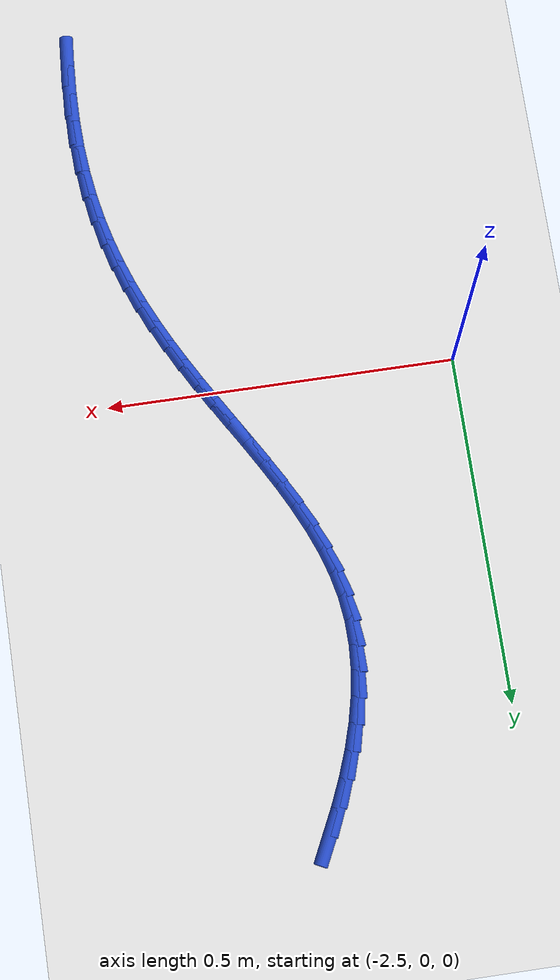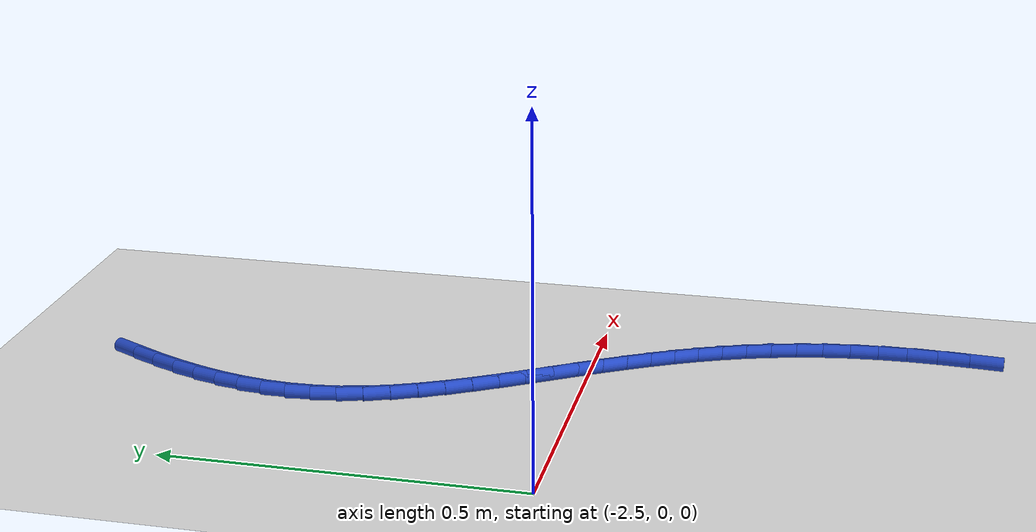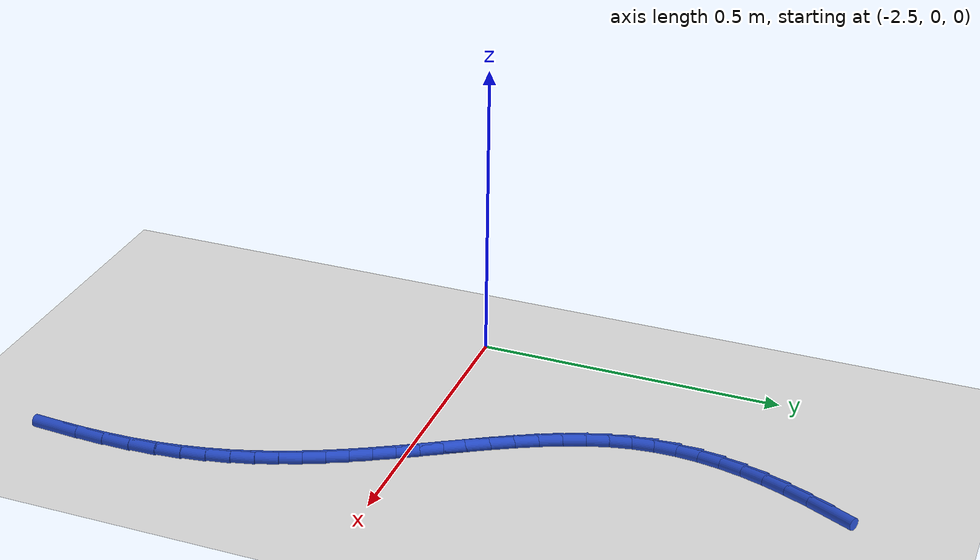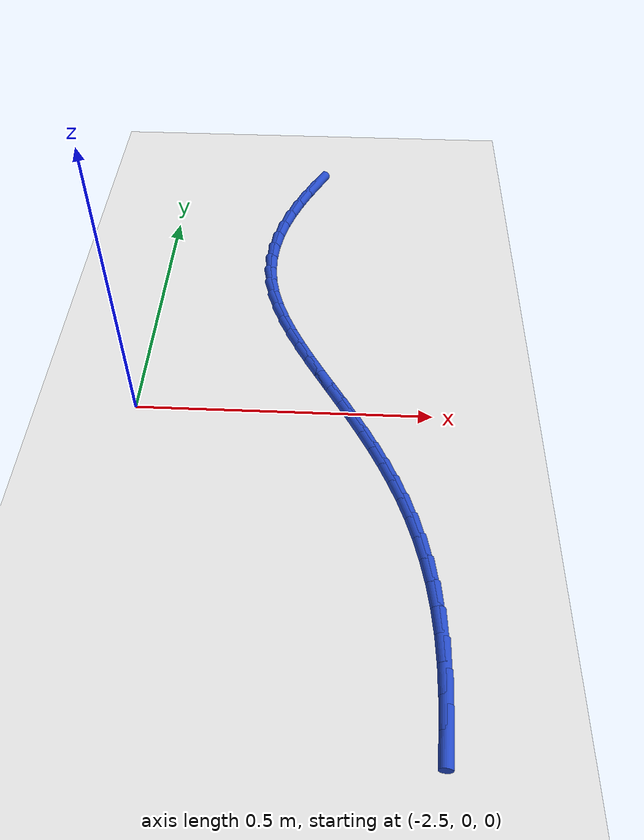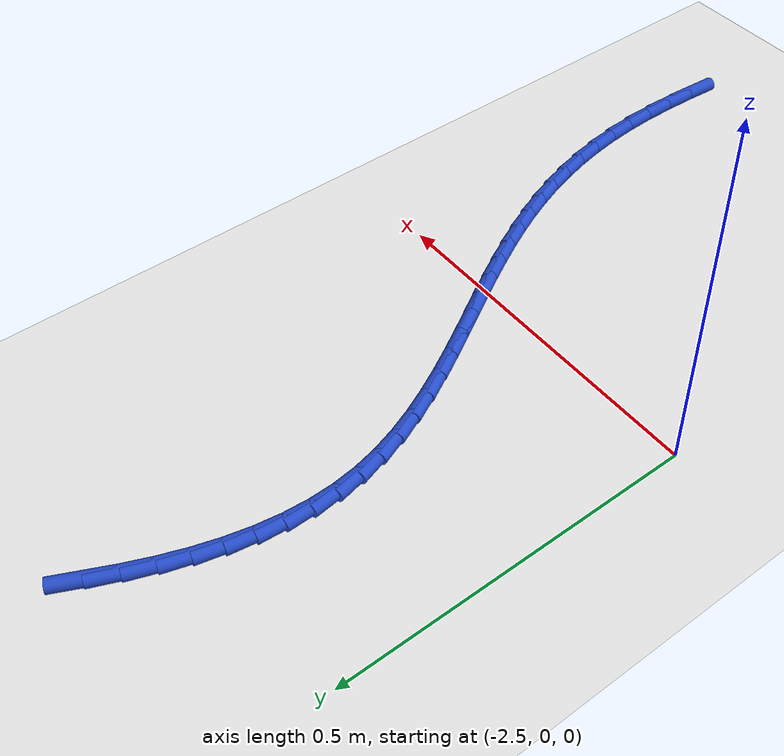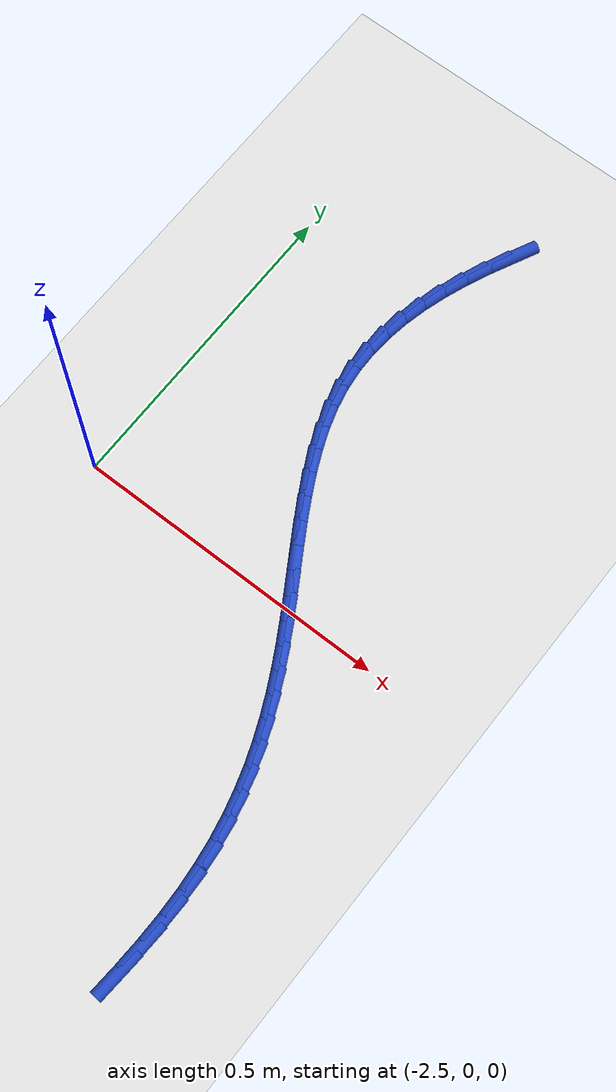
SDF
<sdf version="1.6">
 <world name="default">
  <model name="ground_plane">
   <static>1</static>
   <link name="link">
    <collision name="collision">
     <geometry><plane><normal>0 0 1</normal><size>100 100</size></plane></geometry>
     <surface><friction><ode><mu>100</mu><mu2>50</mu2></ode></friction></surface>
    </collision>
    <visual name="visual">
     <cast_shadows>0</cast_shadows>
     <geometry><plane><normal>0 0 1</normal><size>100 100</size></plane></geometry>
     <material>
      <script><uri>file://media/materials/scripts/gazebo.material</uri><name>Gazebo/WhiteGlow</name></script>
     </material>
    </visual>
   </link>
  </model>
  <model name="line">
   <link name="link_84">
    <pose>-2.222268008583826 0.6439682551880569 0.01 0 1.57 1.1169397786292758</pose>
    <collision name="collision">
     <geometry><cylinder><radius>0.01</radius><length>0.08</length></cylinder></geometry>
    </collision>
    <visual name="visual">
     <material>
      <script><name>Gazebo/Blue</name><uri>file://media/materials/scripts/gazebo.material</uri></script>
     </material>
     <geometry><cylinder><radius>0.01</radius><length>0.08</length></cylinder></geometry>
    </visual>
   </link>
   <link name="link_85">
    <pose>-2.240651079986755 0.6062841587162477 0.01 0 1.57 1.161150256735616</pose>
    <collision name="collision">
     <geometry><cylinder><radius>0.01</radius><length>0.08</length></cylinder></geometry>
    </collision>
    <visual name="visual">
     <material>
      <script><name>Gazebo/Blue</name><uri>file://media/materials/scripts/gazebo.material</uri></script>
     </material>
     <geometry><cylinder><radius>0.01</radius><length>0.08</length></cylinder></geometry>
    </visual>
   </link>
   <link name="link_86">
    <pose>-2.256825405246102 0.5690341935806772 0.01 0 1.57 1.2125159011337443</pose>
    <collision name="collision">
     <geometry><cylinder><radius>0.01</radius><length>0.08</length></cylinder></geometry>
    </collision>
    <visual name="visual">
     <material>
      <script><name>Gazebo/Blue</name><uri>file://media/materials/scripts/gazebo.material</uri></script>
     </material>
     <geometry><cylinder><radius>0.01</radius><length>0.08</length></cylinder></geometry>
    </visual>
   </link>
   <link name="link_87">
    <pose>-2.270620321164356 0.5321928248246031 0.01 0 1.57 1.27162345154952</pose>
    <collision name="collision">
     <geometry><cylinder><radius>0.01</radius><length>0.08</length></cylinder></geometry>
    </collision>
    <visual name="visual">
     <material>
      <script><name>Gazebo/Blue</name><uri>file://media/materials/scripts/gazebo.material</uri></script>
     </material>
     <geometry><cylinder><radius>0.01</radius><length>0.08</length></cylinder></geometry>
    </visual>
   </link>
   <link name="link_88">
    <pose>-2.281865164544009 0.49573451749128344 0.01 0 1.57 1.3389234756282162</pose>
    <collision name="collision">
     <geometry><cylinder><radius>0.01</radius><length>0.08</length></cylinder></geometry>
    </collision>
    <visual name="visual">
     <material>
      <script><name>Gazebo/Blue</name><uri>file://media/materials/scripts/gazebo.material</uri></script>
     </material>
     <geometry><cylinder><radius>0.01</radius><length>0.08</length></cylinder></geometry>
    </visual>
   </link>
   <link name="link_89">
    <pose>-2.290389272187549 0.45963373662397583 0.01 0 1.57 1.4146034957193239</pose>
    <collision name="collision">
     <geometry><cylinder><radius>0.01</radius><length>0.08</length></cylinder></geometry>
    </collision>
    <visual name="visual">
     <material>
      <script><name>Gazebo/Blue</name><uri>file://media/materials/scripts/gazebo.material</uri></script>
     </material>
     <geometry><cylinder><radius>0.01</radius><length>0.08</length></cylinder></geometry>
    </visual>
   </link>
   <link name="link_90">
    <pose>-2.2960219808974682 0.42386494726593826 0.01 0 1.57 1.4984334043053187</pose>
    <collision name="collision">
     <geometry><cylinder><radius>0.01</radius><length>0.08</length></cylinder></geometry>
    </collision>
    <visual name="visual">
     <material>
      <script><name>Gazebo/Blue</name><uri>file://media/materials/scripts/gazebo.material</uri></script>
     </material>
     <geometry><cylinder><radius>0.01</radius><length>0.08</length></cylinder></geometry>
    </visual>
   </link>
   <link name="link_91">
    <pose>-2.2985926274762565 0.38840261446042845 0.01 0 1.57 -1.5519795544057102</pose>
    <collision name="collision">
     <geometry><cylinder><radius>0.01</radius><length>0.08</length></cylinder></geometry>
    </collision>
    <visual name="visual">
     <material>
      <script><name>Gazebo/Blue</name><uri>file://media/materials/scripts/gazebo.material</uri></script>
     </material>
     <geometry><cylinder><radius>0.01</radius><length>0.08</length></cylinder></geometry>
    </visual>
   </link>
   <link name="link_92">
    <pose>-2.2979305487264035 0.35322120325070455 0.01 0 1.57 -1.4549155898728612</pose>
    <collision name="collision">
     <geometry><cylinder><radius>0.01</radius><length>0.08</length></cylinder></geometry>
    </collision>
    <visual name="visual">
     <material>
      <script><name>Gazebo/Blue</name><uri>file://media/materials/scripts/gazebo.material</uri></script>
     </material>
     <geometry><cylinder><radius>0.01</radius><length>0.08</length></cylinder></geometry>
    </visual>
   </link>
   <link name="link_93">
    <pose>-2.2938650814504005 0.3182951786800239 0.01 0 1.57 -1.3562583666873786</pose>
    <collision name="collision">
     <geometry><cylinder><radius>0.01</radius><length>0.08</length></cylinder></geometry>
    </collision>
    <visual name="visual">
     <material>
      <script><name>Gazebo/Blue</name><uri>file://media/materials/scripts/gazebo.material</uri></script>
     </material>
     <geometry><cylinder><radius>0.01</radius><length>0.08</length></cylinder></geometry>
    </visual>
   </link>
   <link name="link_94">
    <pose>-2.2863063035207962 0.28360457010060913 0.01 0 1.57 -1.26922442815808</pose>
    <collision name="collision">
     <geometry><cylinder><radius>0.01</radius><length>0.08</length></cylinder></geometry>
    </collision>
    <visual name="visual">
     <material>
      <script><name>Gazebo/Blue</name><uri>file://media/materials/scripts/gazebo.material</uri></script>
     </material>
     <geometry><cylinder><radius>0.01</radius><length>0.08</length></cylinder></geometry>
    </visual>
   </link>
   <link name="link_95">
    <pose>-2.275591640879042 0.24915885775862104 0.01 0 1.57 -1.1973813058036513</pose>
    <collision name="collision">
     <geometry><cylinder><radius>0.01</radius><length>0.08</length></cylinder></geometry>
    </collision>
    <visual name="visual">
     <material>
      <script><name>Gazebo/Blue</name><uri>file://media/materials/scripts/gazebo.material</uri></script>
     </material>
     <geometry><cylinder><radius>0.01</radius><length>0.08</length></cylinder></geometry>
    </visual>
   </link>
   <link name="link_96">
    <pose>-2.262199375941511 0.21497722909069447 0.01 0 1.57 -1.1397000402656394</pose>
    <collision name="collision">
     <geometry><cylinder><radius>0.01</radius><length>0.08</length></cylinder></geometry>
    </collision>
    <visual name="visual">
     <material>
      <script><name>Gazebo/Blue</name><uri>file://media/materials/scripts/gazebo.material</uri></script>
     </material>
     <geometry><cylinder><radius>0.01</radius><length>0.08</length></cylinder></geometry>
    </visual>
   </link>
   <link name="link_97">
    <pose>-2.2466078778259915 0.18107887750853213 0.01 0 1.57 -1.0949742536086815</pose>
    <collision name="collision">
     <geometry><cylinder><radius>0.01</radius><length>0.08</length></cylinder></geometry>
    </collision>
    <visual name="visual">
     <material>
      <script><name>Gazebo/Blue</name><uri>file://media/materials/scripts/gazebo.material</uri></script>
     </material>
     <geometry><cylinder><radius>0.01</radius><length>0.08</length></cylinder></geometry>
    </visual>
   </link>
   <link name="link_98">
    <pose>-2.229295515650271 0.14748299642383803 0.01 0 1.57 -1.062110467449771</pose>
    <collision name="collision">
     <geometry><cylinder><radius>0.01</radius><length>0.08</length></cylinder></geometry>
    </collision>
    <visual name="visual">
     <material>
      <script><name>Gazebo/Blue</name><uri>file://media/materials/scripts/gazebo.material</uri></script>
     </material>
     <geometry><cylinder><radius>0.01</radius><length>0.08</length></cylinder></geometry>
    </visual>
   </link>
   <link name="link_99">
    <pose>-2.2107406585321394 0.11420877924831564 0.01 0 1.57 -1.0402818467778836</pose>
    <collision name="collision">
     <geometry><cylinder><radius>0.01</radius><length>0.08</length></cylinder></geometry>
    </collision>
    <visual name="visual">
     <material>
      <script><name>Gazebo/Blue</name><uri>file://media/materials/scripts/gazebo.material</uri></script>
     </material>
     <geometry><cylinder><radius>0.01</radius><length>0.08</length></cylinder></geometry>
    </visual>
   </link>
   <link name="link_100">
    <pose>-2.1914216755893836 0.0812754193936685 0.01 0 1.57 -1.0290065195776636</pose>
    <collision name="collision">
     <geometry><cylinder><radius>0.01</radius><length>0.08</length></cylinder></geometry>
    </collision>
    <visual name="visual">
     <material>
      <script><name>Gazebo/Blue</name><uri>file://media/materials/scripts/gazebo.material</uri></script>
     </material>
     <geometry><cylinder><radius>0.01</radius><length>0.08</length></cylinder></geometry>
    </visual>
   </link>
   <link name="link_101">
    <pose>-2.171816935939793 0.04870211027160015 0.01 0 1.57 -1.0281942267876836</pose>
    <collision name="collision">
     <geometry><cylinder><radius>0.01</radius><length>0.08</length></cylinder></geometry>
    </collision>
    <visual name="visual">
     <material>
      <script><name>Gazebo/Blue</name><uri>file://media/materials/scripts/gazebo.material</uri></script>
     </material>
     <geometry><cylinder><radius>0.01</radius><length>0.08</length></cylinder></geometry>
    </visual>
   </link>
   <link name="link_102">
    <pose>-2.152404808701156 0.01650804529381416 0.01 0 1.57 -1.0376889495418282</pose>
    <collision name="collision">
     <geometry><cylinder><radius>0.01</radius><length>0.08</length></cylinder></geometry>
    </collision>
    <visual name="visual">
     <material>
      <script><name>Gazebo/Blue</name><uri>file://media/materials/scripts/gazebo.material</uri></script>
     </material>
     <geometry><cylinder><radius>0.01</radius><length>0.08</length></cylinder></geometry>
    </visual>
   </link>
   <link name="link_103">
    <pose>-2.1336298196205377 -0.01530864346488393 0.01 0 1.57 -1.0545314928921254</pose>
    <collision name="collision">
     <geometry><cylinder><radius>0.01</radius><length>0.08</length></cylinder></geometry>
    </collision>
    <visual name="visual">
     <material>
      <script><name>Gazebo/Blue</name><uri>file://media/materials/scripts/gazebo.material</uri></script>
     </material>
     <geometry><cylinder><radius>0.01</radius><length>0.08</length></cylinder></geometry>
    </visual>
   </link>
   <link name="link_104">
    <pose>-2.115699794162674 -0.04689712676280903 0.01 0 1.57 -1.0774001506959099</pose>
    <collision name="collision">
     <geometry><cylinder><radius>0.01</radius><length>0.08</length></cylinder></geometry>
    </collision>
    <visual name="visual">
     <material>
      <script><name>Gazebo/Blue</name><uri>file://media/materials/scripts/gazebo.material</uri></script>
     </material>
     <geometry><cylinder><radius>0.01</radius><length>0.08</length></cylinder></geometry>
    </visual>
   </link>
   <link name="link_105">
    <pose>-2.0987215020459513 -0.07846946416260889 0.01 0 1.57 -1.1062444806550582</pose>
    <collision name="collision">
     <geometry><cylinder><radius>0.01</radius><length>0.08</length></cylinder></geometry>
    </collision>
    <visual name="visual">
     <material>
      <script><name>Gazebo/Blue</name><uri>file://media/materials/scripts/gazebo.material</uri></script>
     </material>
     <geometry><cylinder><radius>0.01</radius><length>0.08</length></cylinder></geometry>
    </visual>
   </link>
   <link name="link_106">
    <pose>-2.082801334768981 -0.11023795059988138 0.01 0 1.57 -1.1408313979849176</pose>
    <collision name="collision">
     <geometry><cylinder><radius>0.01</radius><length>0.08</length></cylinder></geometry>
    </collision>
    <visual name="visual">
     <material>
      <script><name>Gazebo/Blue</name><uri>file://media/materials/scripts/gazebo.material</uri></script>
     </material>
     <geometry><cylinder><radius>0.01</radius><length>0.08</length></cylinder></geometry>
    </visual>
   </link>
   <link name="link_107">
    <pose>-2.0680456838303787 -0.14241488101022445 0.01 0 1.57 -1.1807154746610262</pose>
    <collision name="collision">
     <geometry><cylinder><radius>0.01</radius><length>0.08</length></cylinder></geometry>
    </collision>
    <visual name="visual">
     <material>
      <script><name>Gazebo/Blue</name><uri>file://media/materials/scripts/gazebo.material</uri></script>
     </material>
     <geometry><cylinder><radius>0.01</radius><length>0.08</length></cylinder></geometry>
    </visual>
   </link>
   <link name="link_108">
    <pose>-2.054560940728758 -0.17521255032923594 0.01 0 1.57 -1.225230463675919</pose>
    <collision name="collision">
     <geometry><cylinder><radius>0.01</radius><length>0.08</length></cylinder></geometry>
    </collision>
    <visual name="visual">
     <material>
      <script><name>Gazebo/Blue</name><uri>file://media/materials/scripts/gazebo.material</uri></script>
     </material>
     <geometry><cylinder><radius>0.01</radius><length>0.08</length></cylinder></geometry>
    </visual>
   </link>
   <link name="link_109">
    <pose>-2.0424534969627324 -0.20884325349251373 0.01 0 1.57 -1.2735042862926875</pose>
    <collision name="collision">
     <geometry><cylinder><radius>0.01</radius><length>0.08</length></cylinder></geometry>
    </collision>
    <visual name="visual">
     <material>
      <script><name>Gazebo/Blue</name><uri>file://media/materials/scripts/gazebo.material</uri></script>
     </material>
     <geometry><cylinder><radius>0.01</radius><length>0.08</length></cylinder></geometry>
    </visual>
   </link>
   <link name="link_110">
    <pose>-2.031829744030916 -0.24351928543565582 0.01 0 1.57 -1.3245017713641818</pose>
    <collision name="collision">
     <geometry><cylinder><radius>0.01</radius><length>0.08</length></cylinder></geometry>
    </collision>
    <visual name="visual">
     <material>
      <script><name>Gazebo/Blue</name><uri>file://media/materials/scripts/gazebo.material</uri></script>
     </material>
     <geometry><cylinder><radius>0.01</radius><length>0.08</length></cylinder></geometry>
    </visual>
   </link>
   <link name="link_111">
    <pose>-2.022796073431923 -0.27945294109425994 0.01 0 1.57 -1.3770929125493565</pose>
    <collision name="collision">
     <geometry><cylinder><radius>0.01</radius><length>0.08</length></cylinder></geometry>
    </collision>
    <visual name="visual">
     <material>
      <script><name>Gazebo/Blue</name><uri>file://media/materials/scripts/gazebo.material</uri></script>
     </material>
     <geometry><cylinder><radius>0.01</radius><length>0.08</length></cylinder></geometry>
    </visual>
   </link>
   <link name="link_112">
    <pose>-2.0154588766643666 -0.3168565154039241 0.01 0 1.57 -1.4301369093452034</pose>
    <collision name="collision">
     <geometry><cylinder><radius>0.01</radius><length>0.08</length></cylinder></geometry>
    </collision>
    <visual name="visual">
     <material>
      <script><name>Gazebo/Blue</name><uri>file://media/materials/scripts/gazebo.material</uri></script>
     </material>
     <geometry><cylinder><radius>0.01</radius><length>0.08</length></cylinder></geometry>
    </visual>
   </link>
   <link name="link_113">
    <pose>-2.0099245452268617 -0.35594230330024623 0.01 0 1.57 -1.4825670146095409</pose>
    <collision name="collision">
     <geometry><cylinder><radius>0.01</radius><length>0.08</length></cylinder></geometry>
    </collision>
    <visual name="visual">
     <material>
      <script><name>Gazebo/Blue</name><uri>file://media/materials/scripts/gazebo.material</uri></script>
     </material>
     <geometry><cylinder><radius>0.01</radius><length>0.08</length></cylinder></geometry>
    </visual>
   </link>
   <link name="link_114">
    <pose>-2.0062994706180204 -0.39692259971882393 0.01 0 1.57 -1.5334608272516486</pose>
    <collision name="collision">
     <geometry><cylinder><radius>0.01</radius><length>0.08</length></cylinder></geometry>
    </collision>
    <visual name="visual">
     <material>
      <script><name>Gazebo/Blue</name><uri>file://media/materials/scripts/gazebo.material</uri></script>
     </material>
     <geometry><cylinder><radius>0.01</radius><length>0.08</length></cylinder></geometry>
    </visual>
   </link>
   <link name="link_115">
    <pose>-2.004690044336458 -0.4400096995952555 0.01 0 1.57 1.5602304202217545</pose>
    <collision name="collision">
     <geometry><cylinder><radius>0.01</radius><length>0.08</length></cylinder></geometry>
    </collision>
    <visual name="visual">
     <material>
      <script><name>Gazebo/Blue</name><uri>file://media/materials/scripts/gazebo.material</uri></script>
     </material>
     <geometry><cylinder><radius>0.01</radius><length>0.08</length></cylinder></geometry>
    </visual>
   </link>
   <link name="link_116">
    <pose>-2.005169329492475 -0.48536949120676826 0.01 0 1.57 1.5232408424785258</pose>
    <collision name="collision">
     <geometry><cylinder><radius>0.01</radius><length>0.08</length></cylinder></geometry>
    </collision>
    <visual name="visual">
     <material>
      <script><name>Gazebo/Blue</name><uri>file://media/materials/scripts/gazebo.material</uri></script>
     </material>
     <geometry><cylinder><radius>0.01</radius><length>0.08</length></cylinder></geometry>
    </visual>
   </link>
   <link name="link_117">
    <pose>-2.007418125333211 -0.5326216721502416 0.01 0 1.57 1.499777392576121</pose>
    <collision name="collision">
     <geometry><cylinder><radius>0.01</radius><length>0.08</length></cylinder></geometry>
    </collision>
    <visual name="visual">
     <material>
      <script><name>Gazebo/Blue</name><uri>file://media/materials/scripts/gazebo.material</uri></script>
     </material>
     <geometry><cylinder><radius>0.01</radius><length>0.08</length></cylinder></geometry>
    </visual>
   </link>
  </model>
 </world>
</sdf>
